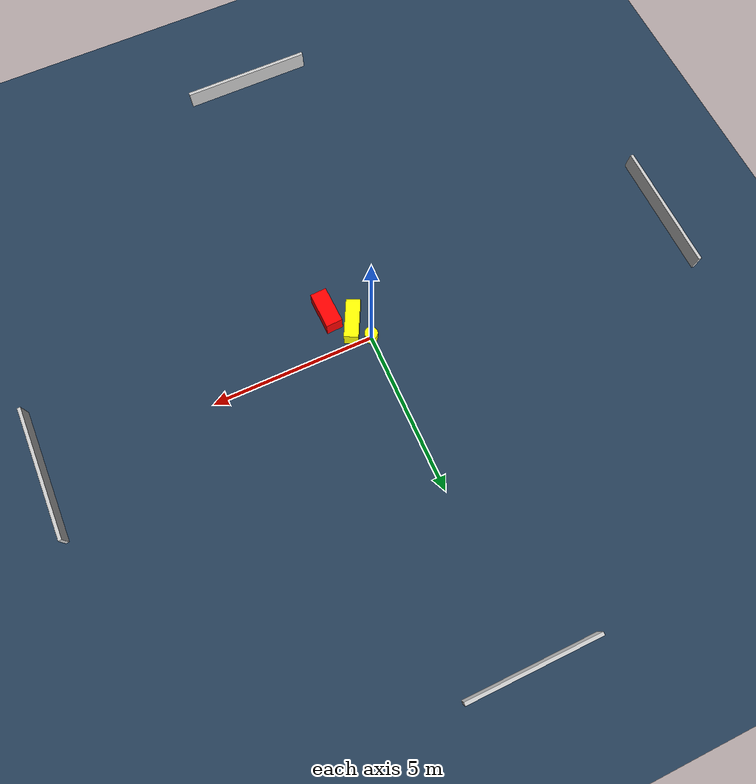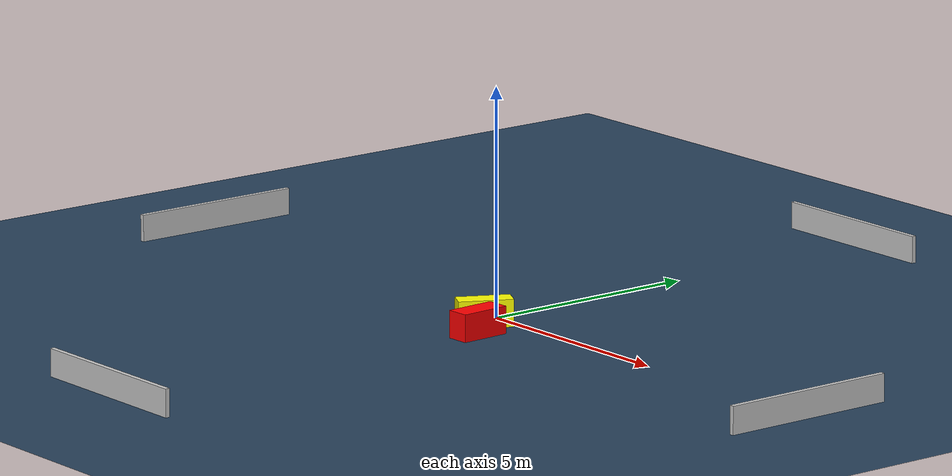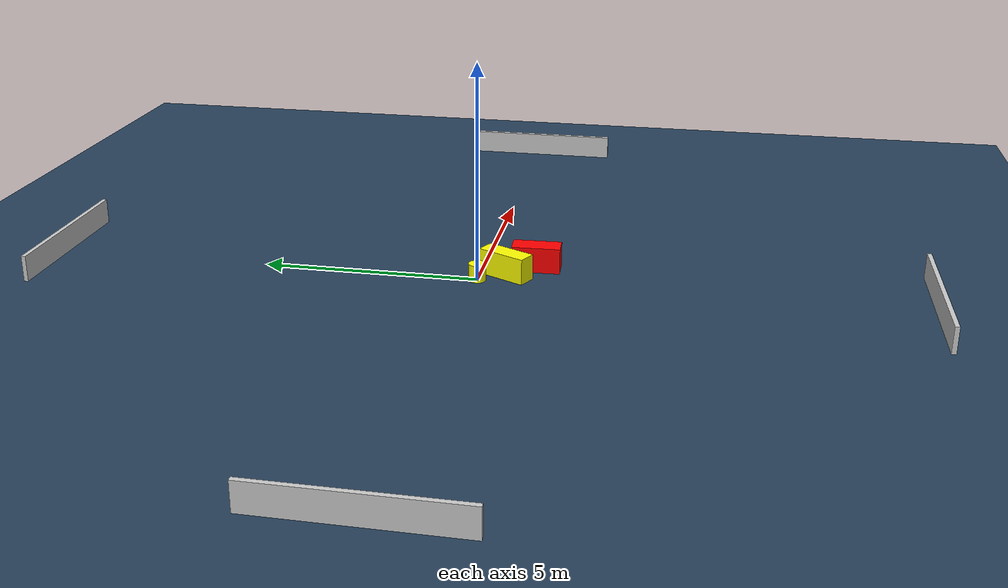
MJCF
<?xml version="1.0" ?>
<mujoco model="generated_environment">
  <option timestep="0.01" integrator="RK4" cone="elliptic"/>
  <default>
    <geom density="1"/>
  </default>
  <asset>
    <texture builtin="gradient" height="3072" name="skybox" rgb1="0.3 0.5 0.7" rgb2="0 0 0" type="skybox" width="512"/>
    <texture builtin="checker" height="300" name="groundplane" rgb1="0.2 0.3 0.4" rgb2="0.1 0.2 0.3" type="2d" width="300"/>
    <material name="groundplane" reflectance="0.2" texrepeat="5 5" texture="groundplane"/>
  </asset>
  <worldbody>
    <light dir="0 0 -1" directional="true" pos="0 0 1.5"/>
    <geom condim="3" friction="0.5 0.005 0.001" material="groundplane" name="floor" pos="0 0 0" size="0 0 0.05" type="plane"/>
    <body name="walls">
      <geom name="wall_1" condim="4" pos="-10.0 0.0 0.3" rgba="0.800000011920929 0.800000011920929 0.800000011920929 1.0" size="0.05 2.0 0.3" type="box"/>
      <geom name="wall_2" condim="4" pos="10.0 0.0 0.3" rgba="0.800000011920929 0.800000011920929 0.800000011920929 1.0" size="0.05 2.0 0.3" type="box"/>
      <geom name="wall_3" condim="4" pos="0.0 -10.0 0.3" rgba="0.800000011920929 0.800000011920929 0.800000011920929 1.0" size="2.0 0.05 0.3" type="box"/>
      <geom name="wall_4" condim="4" pos="0.0 10.0 0.3" rgba="0.800000011920929 0.800000011920929 0.800000011920929 1.0" size="2.0 0.05 0.3" type="box"/>
    </body>
    <body name="robot">
      <joint name="joint_x" type="slide" pos="0 0 0" axis="1 0 0"/>
      <joint name="joint_y" type="slide" pos="0 0 0" axis="0 1 0"/>
      <geom name="robot" type="cylinder" pos="0.0 0.0 0.2" size="0.2 0.2 0.0" mass="5.0" friction="1.0 0.005 0.0001" condim="4" rgba="1.0 1.0 0.0 1.0"/>
    </body>
    <body name="obstacle_1_movable">
      <geom name="obstacle_1_movable" condim="4" pos="0.34245056008448077 -0.5959652816804164 0.3" euler="0 0 62.84504208120564" friction="0.0 0.005 0.001" rgba="1.0 1.0 0.0 1.0" size="0.5932203224801168 0.21635282817876877 0.3" type="box" mass="0.1"/>
      <joint type="free"/>
    </body>
    <body name="obstacle_2_static">
      <geom name="obstacle_2_static" condim="4" pos="0.9060972964589458 -1.2168415668715475 0.3" euler="0 0 272.2971094713988" friction="0.0 0.005 0.001" rgba="1.0 0.0 0.0 1.0" size="0.558776210719041 0.2513961619991828 0.3" type="box"/>
    </body>
  </worldbody>
  <actuator>
    <motor name="actuator_x" joint="joint_x" gear="1" ctrlrange="-1 1"/>
    <motor name="actuator_y" joint="joint_y" gear="1" ctrlrange="-1 1"/>
  </actuator>
</mujoco>
